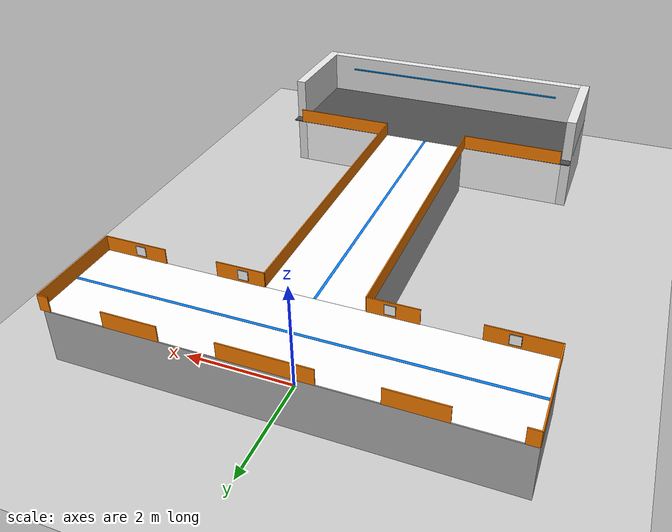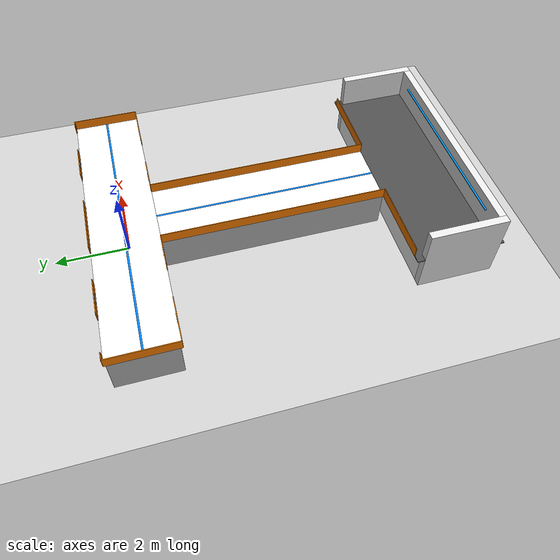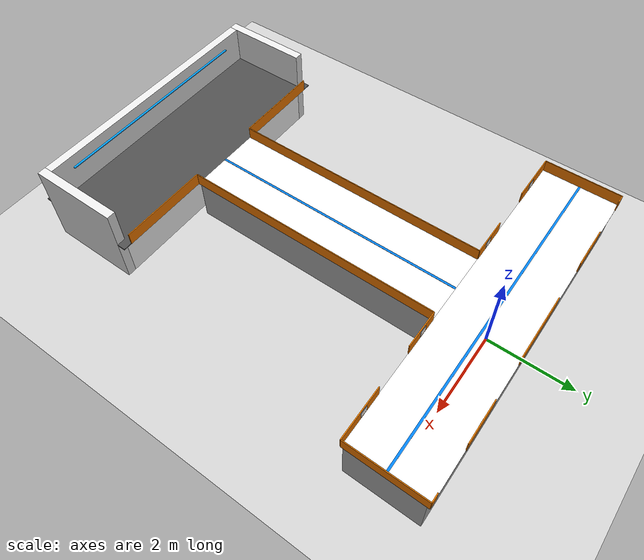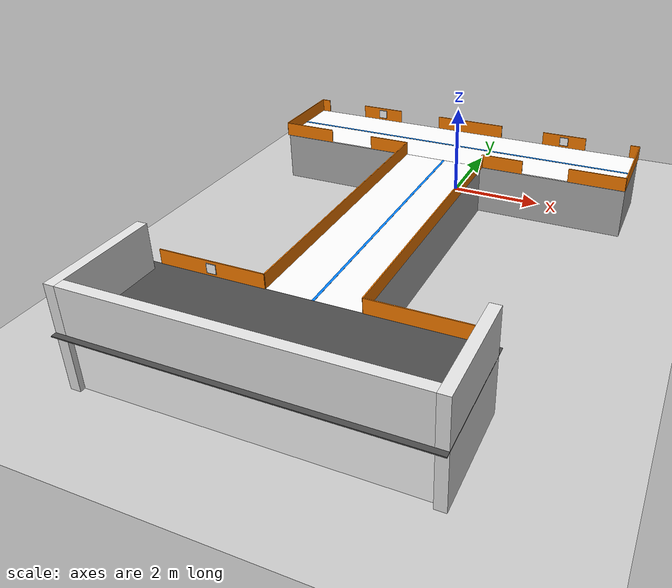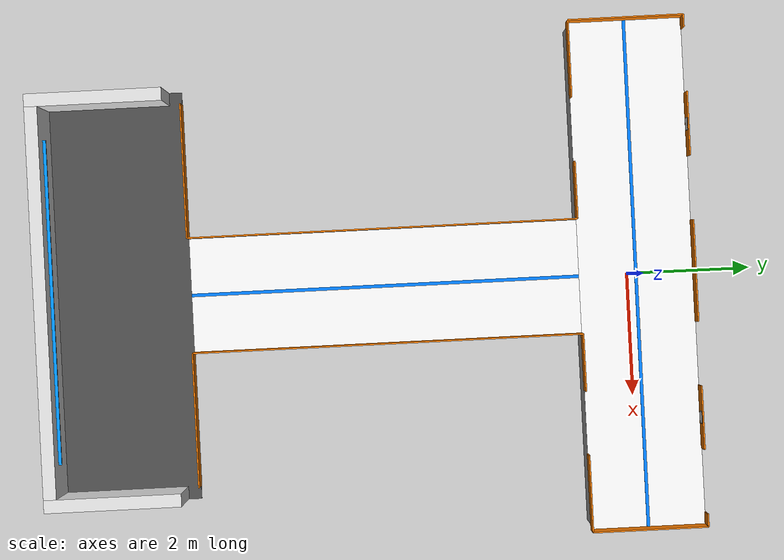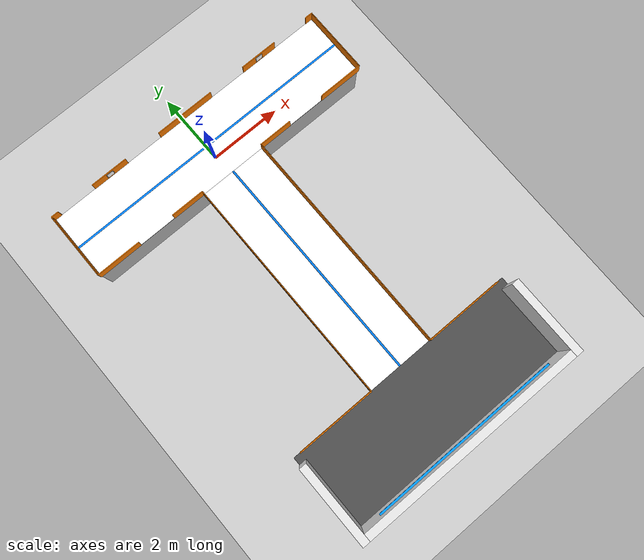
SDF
<sdf version="1.7">
 <world name="restaurant">
  <physics type="ode"><max_step_size>0.003</max_step_size><real_time_factor>1.0</real_time_factor></physics>
  <plugin name="ignition::gazebo::systems::Physics" filename="libignition-gazebo-physics-system.so"/>
  <plugin name="ignition::gazebo::systems::UserCommands" filename="libignition-gazebo-user-commands-system.so"/>
  <plugin name="ignition::gazebo::systems::SceneBroadcaster" filename="libignition-gazebo-scene-broadcaster-system.so"/>
  <scene>
   <ambient>0.4 0.4 0.4 1</ambient>
   <background>0.7 0.7 0.7 1</background>
   <shadows>true</shadows>
   <grid>false</grid>
  </scene>
  <light name="sun" type="directional">
   <pose>0 0 10 0 -0 0</pose>
   <cast_shadows>false</cast_shadows>
   <intensity>1</intensity>
   <direction>-0.5 0.1 -0.9</direction>
   <diffuse>1 1 1 1</diffuse>
   <specular>1 1 1 1</specular>
   <attenuation><range>10</range><linear>1</linear><constant>1</constant><quadratic>0</quadratic></attenuation>
  </light>
  <model name="ground_plane">
   <static>true</static>
   <link name="link">
    <collision name="collision">
     <geometry><plane><normal>0.0 0.0 1</normal><size>100 100</size></plane></geometry>
    </collision>
    <visual name="visual">
     <geometry><plane><normal>0 0 1</normal><size>100 100</size></plane></geometry>
     <material><ambient>0.8 0.8 0.8 1</ambient><diffuse>0.8 0.8 0.8 1</diffuse></material>
    </visual>
   </link>
  </model>
  <model name="kitchen_hub">
   <static>true</static>
   <pose>0 -8.2 0 0 -0 0</pose>
   <link name="link">
    <visual name="base_visual">
     <pose>0 0 0.5 0 0 0</pose>
     <geometry><box><size>6.0 2.0 1.0</size></box></geometry>
     <material><ambient>1 1 1 1</ambient><diffuse>1 1 1 1</diffuse><specular>0.5 0.5 0.5 1</specular></material>
    </visual>
    <collision name="base_collision">
     <pose>0 0 0.5 0 0 0</pose>
     <geometry><box><size>6.0 2.0 1.0</size></box></geometry>
    </collision>
    <visual name="top_counter">
     <pose>0 0 1.1 0 0 0</pose>
     <geometry><box><size>6.4 2.4 0.02</size></box></geometry>
     <material>
      <ambient>0.3 0.3 0.3 1</ambient>
      <diffuse>0.3 0.3 0.3 1</diffuse>
      <specular>1 1 1 1</specular>
     </material>
    </visual>
    <collision name="top_counter">
     <pose>0 0 1.1 0 0 0</pose>
     <geometry><box><size>6.4 2.4 0.02</size></box></geometry>
    </collision>
    <visual name="back_wall">
     <pose>0 -1.0 1.5 0 0 0</pose>
     <geometry><box><size>6.0 0.2 1.0</size></box></geometry>
     <material><ambient>0.9 0.9 0.9 1</ambient><diffuse>0.9 0.9 0.9 1</diffuse></material>
    </visual>
    <visual name="tech_accent">
     <pose>0 -0.9 1.7 0 0 0</pose>
     <geometry><box><size>5.0 0.1 0.02</size></box></geometry>
     <material><ambient>0 0.6 1 1</ambient><diffuse>0 0.6 1 1</diffuse><emissive>0 0.3 0.5 1</emissive></material>
    </visual>
   </link>
  </model>
  <model name="kitchen_wall_left">
   <static>true</static>
   <pose>-3.1 -8.25 1.0 0 0 0</pose>
   <link name="link">
    <visual name="visual">
     <geometry><box><size>0.2 2.1 2.0</size></box></geometry>
     <material><ambient>0.9 0.9 0.9 1</ambient><diffuse>0.9 0.9 0.9 1</diffuse></material>
    </visual>
    <collision name="collision"><geometry><box><size>0.2 2.1 2.0</size></box></geometry></collision>
   </link>
  </model>
  <model name="kitchen_wall_right">
   <static>true</static>
   <pose>3.1 -8.25 1.0 0 0 0</pose>
   <link name="link">
    <visual name="visual">
     <geometry><box><size>0.2 2.1 2.0</size></box></geometry>
     <material><ambient>0.9 0.9 0.9 1</ambient><diffuse>0.9 0.9 0.9 1</diffuse></material>
    </visual>
    <collision name="collision"><geometry><box><size>0.2 2.1 2.0</size></box></geometry></collision>
   </link>
  </model>
  <model name="kitchen_front_wall_left">
   <static>true</static>
   <pose>-1.95 -7.0 1.25 0 -0 0</pose>
   <link name="l">
    <visual name="v">
     <geometry><box><size>2.1 0.02 0.3</size></box></geometry>
     <material><ambient>0.8 0.4 0 1</ambient><diffuse>1 0.5 0 1</diffuse></material>
    </visual>
    <collision name="c"><geometry><box><size>2.1 0.02 0.3</size></box></geometry></collision>
   </link>
  </model>
  <model name="kitchen_front_wall_right">
   <static>true</static>
   <pose>1.95 -7.0 1.25 0 -0 0</pose>
   <link name="l">
    <visual name="v">
     <geometry><box><size>2.1 0.02 0.3</size></box></geometry>
     <material><ambient>0.8 0.4 0 1</ambient><diffuse>1 0.5 0 1</diffuse></material>
    </visual>
    <collision name="c"><geometry><box><size>2.1 0.02 0.3</size></box></geometry></collision>
   </link>
  </model>
  <model name="q_dock">
   <static>true</static>
   <pose>-1.95 -7.01 1.25 0 -0 0</pose>
   <link name="link">
    <visual name="base">
     <geometry><box><size>0.2 0.005 0.2</size></box></geometry>
     <material><ambient>0 0 0 1</ambient><diffuse>0 0 0 1</diffuse></material>
    </visual>
    <visual name="pattern">
     <pose>0 -0.006 0 0 0 0</pose>
     <geometry><box><size>0.18 0.001 0.18</size></box></geometry>
     <material>
      <ambient>1 1 1 1</ambient>
      <diffuse>1 1 1 1</diffuse>
      <specular>0 0 0 1</specular>
      <pbr>
       <metal><albedo_map>aruco_marker_0.png</albedo_map><metalness>0.0</metalness><roughness>1.0</roughness></metal>
      </pbr>
     </material>
    </visual>
   </link>
  </model>
  <model name="track_stem">
   <static>true</static>
   <pose>0 -3.95 1.1 0 -0 0</pose>
   <link name="l">
    <visual name="v">
     <geometry><box><size>1.8 6.1 0.02</size></box></geometry>
     <material><ambient>1 1 1 1</ambient><diffuse>1 1 1 1</diffuse></material>
    </visual>
    <collision name="surface"><geometry><box><size>1.8 6.1 0.02</size></box></geometry></collision>
    <visual name="ped">
     <pose>0 0 -0.55 0 0 0</pose>
     <geometry><box><size>1.7 6.1 1.1</size></box></geometry>
     <material><ambient>0.7 0.7 0.7 1</ambient><diffuse>0.7 0.7 0.7 1</diffuse></material>
    </visual>
    <collision name="ped">
     <pose>0 0 -0.55 0 0 0</pose>
     <geometry><box><size>1.7 6.1 1.1</size></box></geometry>
    </collision>
    <visual name="a">
     <pose>0 0 0.01 0 0 0</pose>
     <geometry><box><size>0.05 6.1 0.005</size></box></geometry>
     <material><ambient>0 0.5 1 1</ambient><diffuse>0 0.5 1 1</diffuse><emissive>0 0.2 1 1</emissive></material>
    </visual>
   </link>
  </model>
  <model name="track_crossbar">
   <static>true</static>
   <pose>0 0 1.1 0 -0 0</pose>
   <link name="l">
    <visual name="v">
     <geometry><box><size>8 1.8 0.02</size></box></geometry>
     <material><ambient>1 1 1 1</ambient><diffuse>1 1 1 1</diffuse></material>
    </visual>
    <collision name="surface"><geometry><box><size>8 1.8 0.02</size></box></geometry></collision>
    <visual name="ped">
     <pose>0 0 -0.55 0 0 0</pose>
     <geometry><box><size>8 1.7 1.1</size></box></geometry>
     <material><ambient>0.7 0.7 0.7 1</ambient><diffuse>0.7 0.7 0.7 1</diffuse></material>
    </visual>
    <collision name="ped">
     <pose>0 0 -0.55 0 0 0</pose>
     <geometry><box><size>8 1.7 1.1</size></box></geometry>
    </collision>
    <visual name="a">
     <pose>0 0 0.01 0 0 0</pose>
     <geometry><box><size>8 0.05 0.005</size></box></geometry>
     <material><ambient>0 0.5 1 1</ambient><diffuse>0 0.5 1 1</diffuse><emissive>0 0.2 1 1</emissive></material>
    </visual>
   </link>
  </model>
  <model name="sw_l">
   <static>true</static>
   <pose>-0.9 -3.95 1.25 0 -0 0</pose>
   <link name="l">
    <visual name="v">
     <geometry><box><size>0.02 6.1 0.3</size></box></geometry>
     <material><ambient>0.8 0.4 0 1</ambient><diffuse>1 0.5 0 1</diffuse></material>
    </visual>
   </link>
  </model>
  <model name="sw_r">
   <static>true</static>
   <pose>0.9 -3.95 1.25 0 -0 0</pose>
   <link name="l">
    <visual name="v">
     <geometry><box><size>0.02 6.1 0.3</size></box></geometry>
     <material><ambient>0.8 0.4 0 1</ambient><diffuse>1 0.5 0 1</diffuse></material>
    </visual>
   </link>
  </model>
  <model name="tw1">
   <static>true</static>
   <pose>-3.9 0.9 1.25 0 -0 0</pose>
   <link name="l">
    <visual name="v">
     <geometry><box><size>0.2 0.02 0.3</size></box></geometry>
     <material><ambient>1 0.5 0 1</ambient><diffuse>1 0.5 0 1</diffuse></material>
    </visual>
   </link>
  </model>
  <model name="tw2">
   <static>true</static>
   <pose>-2.3 0.9 1.25 0 -0 0</pose>
   <link name="l">
    <visual name="v">
     <geometry><box><size>1 0.02 0.3</size></box></geometry>
     <material><ambient>1 0.5 0 1</ambient><diffuse>1 0.5 0 1</diffuse></material>
    </visual>
   </link>
  </model>
  <model name="tw3">
   <static>true</static>
   <pose>0 0.9 1.25 0 -0 0</pose>
   <link name="l">
    <visual name="v">
     <geometry><box><size>1.6 0.02 0.3</size></box></geometry>
     <material><ambient>1 0.5 0 1</ambient><diffuse>1 0.5 0 1</diffuse></material>
    </visual>
   </link>
  </model>
  <model name="tw4">
   <static>true</static>
   <pose>2.3 0.9 1.25 0 -0 0</pose>
   <link name="l">
    <visual name="v">
     <geometry><box><size>1 0.02 0.3</size></box></geometry>
     <material><ambient>1 0.5 0 1</ambient><diffuse>1 0.5 0 1</diffuse></material>
    </visual>
   </link>
  </model>
  <model name="tw5">
   <static>true</static>
   <pose>3.9 0.9 1.25 0 -0 0</pose>
   <link name="l">
    <visual name="v">
     <geometry><box><size>0.2 0.02 0.3</size></box></geometry>
     <material><ambient>1 0.5 0 1</ambient><diffuse>1 0.5 0 1</diffuse></material>
    </visual>
   </link>
  </model>
  <model name="bw1">
   <static>true</static>
   <pose>-3.4 -0.9 1.25 0 -0 0</pose>
   <link name="l">
    <visual name="v">
     <geometry><box><size>1.2 0.02 0.3</size></box></geometry>
     <material><ambient>1 0.5 0 1</ambient><diffuse>1 0.5 0 1</diffuse></material>
    </visual>
   </link>
  </model>
  <model name="bw2">
   <static>true</static>
   <pose>-1.35 -0.9 1.25 0 -0 0</pose>
   <link name="l">
    <visual name="v">
     <geometry><box><size>0.9 0.02 0.3</size></box></geometry>
     <material><ambient>1 0.5 0 1</ambient><diffuse>1 0.5 0 1</diffuse></material>
    </visual>
   </link>
  </model>
  <model name="bw3">
   <static>true</static>
   <pose>1.35 -0.9 1.25 0 -0 0</pose>
   <link name="l">
    <visual name="v">
     <geometry><box><size>0.9 0.02 0.3</size></box></geometry>
     <material><ambient>1 0.5 0 1</ambient><diffuse>1 0.5 0 1</diffuse></material>
    </visual>
   </link>
  </model>
  <model name="bw4">
   <static>true</static>
   <pose>3.4 -0.9 1.25 0 -0 0</pose>
   <link name="l">
    <visual name="v">
     <geometry><box><size>1.2 0.02 0.3</size></box></geometry>
     <material><ambient>1 0.5 0 1</ambient><diffuse>1 0.5 0 1</diffuse></material>
    </visual>
   </link>
  </model>
  <model name="el">
   <static>true</static>
   <pose>-4 0 1.25 0 -0 0</pose>
   <link name="l">
    <visual name="v">
     <geometry><box><size>0.02 1.8 0.3</size></box></geometry>
     <material><ambient>1 0.5 0 1</ambient><diffuse>1 0.5 0 1</diffuse></material>
    </visual>
   </link>
  </model>
  <model name="er">
   <static>true</static>
   <pose>4 0 1.25 0 -0 0</pose>
   <link name="l">
    <visual name="v">
     <geometry><box><size>0.02 1.8 0.3</size></box></geometry>
     <material><ambient>1 0.5 0 1</ambient><diffuse>1 0.5 0 1</diffuse></material>
    </visual>
   </link>
  </model>
  <model name="q1">
   <static>true</static>
   <pose>-3.29282 -0.89 1.25 0 -0 0</pose>
   <link name="link">
    <visual name="base">
     <geometry><box><size>0.2 0.005 0.2</size></box></geometry>
     <material><ambient>0 0 0 1</ambient><diffuse>0 0 0 1</diffuse></material>
    </visual>
    <visual name="pattern">
     <pose>0 0.006 0 0 0 0</pose>
     <geometry><box><size>0.18 0.001 0.18</size></box></geometry>
     <material>
      <ambient>1 1 1 1</ambient>
      <diffuse>1 1 1 1</diffuse>
      <specular>0 0 0 1</specular>
      <pbr>
       <metal><albedo_map>aruco_marker_1.png</albedo_map><metalness>0.0</metalness><roughness>1.0</roughness></metal>
      </pbr>
     </material>
    </visual>
   </link>
  </model>
  <model name="q2">
   <static>true</static>
   <pose>-2.3 0.89 1.25 0 -0 3.14159</pose>
   <link name="link">
    <visual name="base">
     <geometry><box><size>0.2 0.005 0.2</size></box></geometry>
     <material><ambient>0 0 0 1</ambient><diffuse>0 0 0 1</diffuse></material>
    </visual>
    <visual name="pattern">
     <pose>0 0.006 0 0 0 0</pose>
     <geometry><box><size>0.18 0.001 0.18</size></box></geometry>
     <material>
      <ambient>1 1 1 1</ambient>
      <diffuse>1 1 1 1</diffuse>
      <specular>0 0 0 1</specular>
      <pbr>
       <metal><albedo_map>aruco_marker_2.png</albedo_map><metalness>0.0</metalness><roughness>1.0</roughness></metal>
      </pbr>
     </material>
    </visual>
   </link>
  </model>
  <model name="q3">
   <static>true</static>
   <pose>-1.3 -0.89 1.25 0 -0 0</pose>
   <link name="link">
    <visual name="base">
     <geometry><box><size>0.2 0.005 0.2</size></box></geometry>
     <material><ambient>0 0 0 1</ambient><diffuse>0 0 0 1</diffuse></material>
    </visual>
    <visual name="pattern">
     <pose>0 0.006 0 0 0 0</pose>
     <geometry><box><size>0.18 0.001 0.18</size></box></geometry>
     <material>
      <ambient>1 1 1 1</ambient>
      <diffuse>1 1 1 1</diffuse>
      <specular>0 0 0 1</specular>
      <pbr>
       <metal><albedo_map>aruco_marker_3.png</albedo_map><metalness>0.0</metalness><roughness>1.0</roughness></metal>
      </pbr>
     </material>
    </visual>
   </link>
  </model>
  <model name="q4">
   <static>true</static>
   <pose>1.3 -0.89 1.25 0 -0 0</pose>
   <link name="link">
    <visual name="base">
     <geometry><box><size>0.2 0.005 0.2</size></box></geometry>
     <material><ambient>0 0 0 1</ambient><diffuse>0 0 0 1</diffuse></material>
    </visual>
    <visual name="pattern">
     <pose>0 0.006 0 0 0 0</pose>
     <geometry><box><size>0.18 0.001 0.18</size></box></geometry>
     <material>
      <ambient>1 1 1 1</ambient>
      <diffuse>1 1 1 1</diffuse>
      <specular>0 0 0 1</specular>
      <pbr>
       <metal><albedo_map>aruco_marker_4.png</albedo_map><metalness>0.0</metalness><roughness>1.0</roughness></metal>
      </pbr>
     </material>
    </visual>
   </link>
  </model>
  <model name="q5">
   <static>true</static>
   <pose>2.3 0.89 1.25 0 -0 3.14159</pose>
   <link name="link">
    <visual name="base">
     <geometry><box><size>0.2 0.005 0.2</size></box></geometry>
     <material><ambient>0 0 0 1</ambient><diffuse>0 0 0 1</diffuse></material>
    </visual>
    <visual name="pattern">
     <pose>0 0.006 0 0 0 0</pose>
     <geometry><box><size>0.18 0.001 0.18</size></box></geometry>
     <material>
      <ambient>1 1 1 1</ambient>
      <diffuse>1 1 1 1</diffuse>
      <specular>0 0 0 1</specular>
      <pbr>
       <metal><albedo_map>aruco_marker_5.png</albedo_map><metalness>0.0</metalness><roughness>1.0</roughness></metal>
      </pbr>
     </material>
    </visual>
   </link>
  </model>
  <model name="q6">
   <static>true</static>
   <pose>3.3 -0.89 1.25 0 -0 0</pose>
   <link name="link">
    <visual name="base">
     <geometry><box><size>0.2 0.005 0.2</size></box></geometry>
     <material><ambient>0 0 0 1</ambient><diffuse>0 0 0 1</diffuse></material>
    </visual>
    <visual name="pattern">
     <pose>0 0.006 0 0 0 0</pose>
     <geometry><box><size>0.18 0.001 0.18</size></box></geometry>
     <material>
      <ambient>1 1 1 1</ambient>
      <diffuse>1 1 1 1</diffuse>
      <specular>0 0 0 1</specular>
      <pbr>
       <metal><albedo_map>aruco_marker_6.png</albedo_map><metalness>0.0</metalness><roughness>1.0</roughness></metal>
      </pbr>
     </material>
    </visual>
   </link>
  </model>
 </world>
</sdf>
